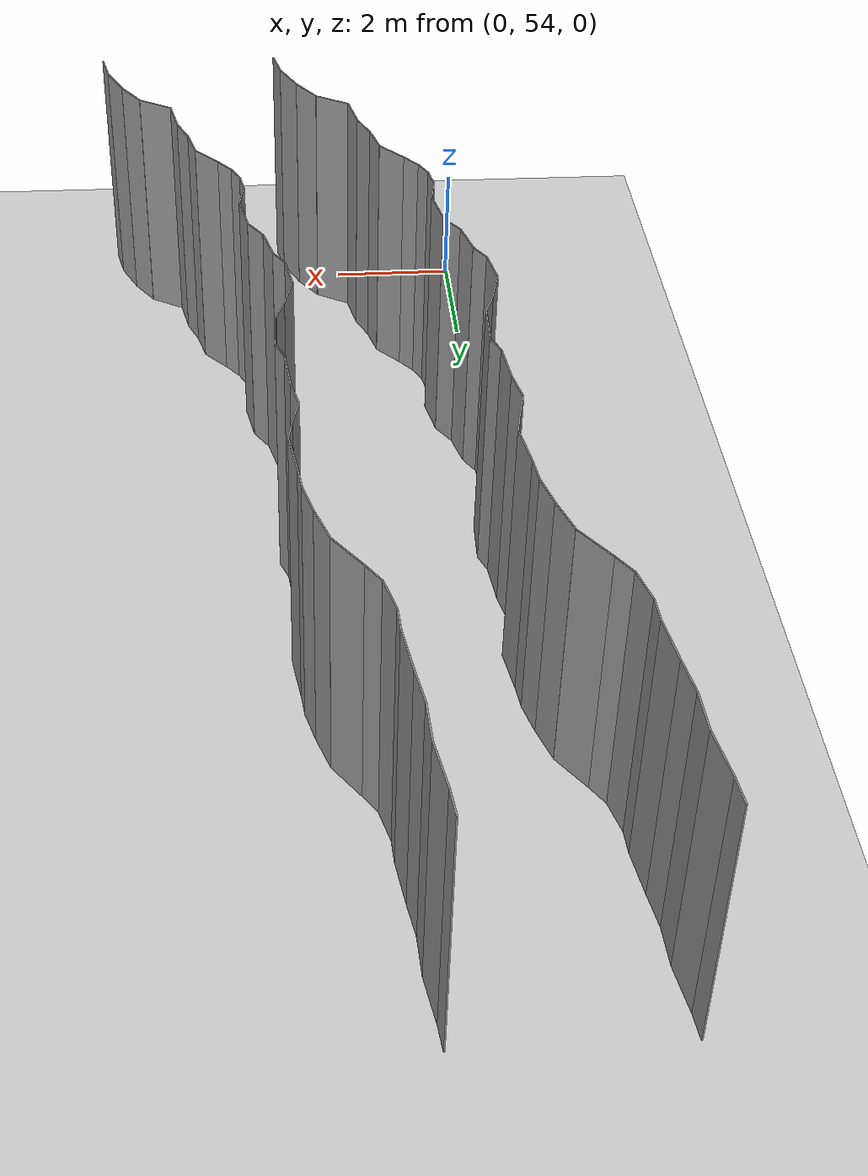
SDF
<sdf version="1.6">
 <world name="default">
  <model name="ground_plane">
   <static>1</static>
   <link name="link">
    <collision name="collision">
     <geometry><plane><normal>0 0 1</normal><size>200 200</size></plane></geometry>
     <surface><friction><ode><mu>100</mu><mu2>50</mu2></ode></friction></surface>
    </collision>
    <visual name="visual">
     <cast_shadows>0</cast_shadows>
     <geometry><plane><normal>0 0 1</normal><size>200 200</size></plane></geometry>
     <material>
      <script><uri>file://media/materials/scripts/gazebo.material</uri><name>Gazebo/Grey</name></script>
     </material>
    </visual>
   </link>
   <pose>0 100 0 0 -0 0</pose>
  </model>
  <model name="wall_224">
   <static>1</static>
   <pose>3.0469100091647694 53.357735936773956 2 0 0 0.21597761606126542</pose>
   <link name="link">
    <collision name="collision"><geometry><box><size>0.02 0.5315800958 4</size></box></geometry></collision>
    <visual name="visual">
     <material>
      <script><name>Gazebo/Grey</name><uri>file://media/materials/scripts/gazebo.material</uri></script>
     </material>
     <geometry><box><size>0.02 0.5315800958 4</size></box></geometry>
    </visual>
   </link>
  </model>
  <model name="wall_225">
   <static>1</static>
   <pose>6.046910009164769 53.357735936773956 2 0 0 0.21597761606126542</pose>
   <link name="link">
    <collision name="collision"><geometry><box><size>0.02 0.5315800958 4</size></box></geometry></collision>
    <visual name="visual">
     <material>
      <script><name>Gazebo/Grey</name><uri>file://media/materials/scripts/gazebo.material</uri></script>
     </material>
     <geometry><box><size>0.02 0.5315800958 4</size></box></geometry>
    </visual>
   </link>
  </model>
  <model name="wall_226">
   <static>1</static>
   <pose>2.8585254818485537 53.89365499840153 2 0 0 0.44398169153281725</pose>
   <link name="link">
    <collision name="collision"><geometry><box><size>0.02 0.6119361437 4</size></box></geometry></collision>
    <visual name="visual">
     <material>
      <script><name>Gazebo/Grey</name><uri>file://media/materials/scripts/gazebo.material</uri></script>
     </material>
     <geometry><box><size>0.02 0.6119361437 4</size></box></geometry>
    </visual>
   </link>
  </model>
  <model name="wall_227">
   <static>1</static>
   <pose>5.858525481848554 53.89365499840153 2 0 0 0.44398169153281725</pose>
   <link name="link">
    <collision name="collision"><geometry><box><size>0.02 0.6119361437 4</size></box></geometry></collision>
    <visual name="visual">
     <material>
      <script><name>Gazebo/Grey</name><uri>file://media/materials/scripts/gazebo.material</uri></script>
     </material>
     <geometry><box><size>0.02 0.6119361437 4</size></box></geometry>
    </visual>
   </link>
  </model>
  <model name="wall_228">
   <static>1</static>
   <pose>2.5685052282514524 54.40315403367497 2 0 0 0.5972428371907589</pose>
   <link name="link">
    <collision name="collision"><geometry><box><size>0.02 0.564029597416 4</size></box></geometry></collision>
    <visual name="visual">
     <material>
      <script><name>Gazebo/Grey</name><uri>file://media/materials/scripts/gazebo.material</uri></script>
     </material>
     <geometry><box><size>0.02 0.564029597416 4</size></box></geometry>
    </visual>
   </link>
  </model>
  <model name="wall_229">
   <static>1</static>
   <pose>5.568505228251452 54.40315403367497 2 0 0 0.5972428371907589</pose>
   <link name="link">
    <collision name="collision"><geometry><box><size>0.02 0.564029597416 4</size></box></geometry></collision>
    <visual name="visual">
     <material>
      <script><name>Gazebo/Grey</name><uri>file://media/materials/scripts/gazebo.material</uri></script>
     </material>
     <geometry><box><size>0.02 0.564029597416 4</size></box></geometry>
    </visual>
   </link>
  </model>
  <model name="wall_230">
   <static>1</static>
   <pose>2.14576811835029 54.79219506804005 2 0 0 1.0377558133247202</pose>
   <link name="link">
    <collision name="collision"><geometry><box><size>0.02 0.613380600814 4</size></box></geometry></collision>
    <visual name="visual">
     <material>
      <script><name>Gazebo/Grey</name><uri>file://media/materials/scripts/gazebo.material</uri></script>
     </material>
     <geometry><box><size>0.02 0.613380600814 4</size></box></geometry>
    </visual>
   </link>
  </model>
  <model name="wall_231">
   <static>1</static>
   <pose>5.14576811835029 54.79219506804005 2 0 0 1.0377558133247202</pose>
   <link name="link">
    <collision name="collision"><geometry><box><size>0.02 0.613380600814 4</size></box></geometry></collision>
    <visual name="visual">
     <material>
      <script><name>Gazebo/Grey</name><uri>file://media/materials/scripts/gazebo.material</uri></script>
     </material>
     <geometry><box><size>0.02 0.613380600814 4</size></box></geometry>
    </visual>
   </link>
  </model>
  <model name="wall_232">
   <static>1</static>
   <pose>1.8197788473367662 55.25654500697312 2 0 0 0.19785230542355284</pose>
   <link name="link">
    <collision name="collision"><geometry><box><size>0.02 0.629284554322 4</size></box></geometry></collision>
    <visual name="visual">
     <material>
      <script><name>Gazebo/Grey</name><uri>file://media/materials/scripts/gazebo.material</uri></script>
     </material>
     <geometry><box><size>0.02 0.629284554322 4</size></box></geometry>
    </visual>
   </link>
  </model>
  <model name="wall_233">
   <static>1</static>
   <pose>4.819778847336766 55.25654500697312 2 0 0 0.19785230542355284</pose>
   <link name="link">
    <collision name="collision"><geometry><box><size>0.02 0.629284554322 4</size></box></geometry></collision>
    <visual name="visual">
     <material>
      <script><name>Gazebo/Grey</name><uri>file://media/materials/scripts/gazebo.material</uri></script>
     </material>
     <geometry><box><size>0.02 0.629284554322 4</size></box></geometry>
    </visual>
   </link>
  </model>
  <model name="wall_234">
   <static>1</static>
   <pose>1.6671939105903992 55.77716529617384 2 0 0 0.404216816663766</pose>
   <link name="link">
    <collision name="collision"><geometry><box><size>0.02 0.461418097082 4</size></box></geometry></collision>
    <visual name="visual">
     <material>
      <script><name>Gazebo/Grey</name><uri>file://media/materials/scripts/gazebo.material</uri></script>
     </material>
     <geometry><box><size>0.02 0.461418097082 4</size></box></geometry>
    </visual>
   </link>
  </model>
  <model name="wall_235">
   <static>1</static>
   <pose>4.667193910590399 55.77716529617384 2 0 0 0.404216816663766</pose>
   <link name="link">
    <collision name="collision"><geometry><box><size>0.02 0.461418097082 4</size></box></geometry></collision>
    <visual name="visual">
     <material>
      <script><name>Gazebo/Grey</name><uri>file://media/materials/scripts/gazebo.material</uri></script>
     </material>
     <geometry><box><size>0.02 0.461418097082 4</size></box></geometry>
    </visual>
   </link>
  </model>
  <model name="wall_236">
   <static>1</static>
   <pose>1.5139411190551675 56.235094826821 2 0 0 0.24904036796168275</pose>
   <link name="link">
    <collision name="collision"><geometry><box><size>0.02 0.507276099676 4</size></box></geometry></collision>
    <visual name="visual">
     <material>
      <script><name>Gazebo/Grey</name><uri>file://media/materials/scripts/gazebo.material</uri></script>
     </material>
     <geometry><box><size>0.02 0.507276099676 4</size></box></geometry>
    </visual>
   </link>
  </model>
  <model name="wall_237">
   <static>1</static>
   <pose>4.5139411190551675 56.235094826821 2 0 0 0.24904036796168275</pose>
   <link name="link">
    <collision name="collision"><geometry><box><size>0.02 0.507276099676 4</size></box></geometry></collision>
    <visual name="visual">
     <material>
      <script><name>Gazebo/Grey</name><uri>file://media/materials/scripts/gazebo.material</uri></script>
     </material>
     <geometry><box><size>0.02 0.507276099676 4</size></box></geometry>
    </visual>
   </link>
  </model>
  <model name="wall_238">
   <static>1</static>
   <pose>1.267714137706734 56.68399894968424 2 0 0 0.7353390931484286</pose>
   <link name="link">
    <collision name="collision"><geometry><box><size>0.02 0.547707799373 4</size></box></geometry></collision>
    <visual name="visual">
     <material>
      <script><name>Gazebo/Grey</name><uri>file://media/materials/scripts/gazebo.material</uri></script>
     </material>
     <geometry><box><size>0.02 0.547707799373 4</size></box></geometry>
    </visual>
   </link>
  </model>
  <model name="wall_239">
   <static>1</static>
   <pose>4.267714137706734 56.68399894968424 2 0 0 0.7353390931484286</pose>
   <link name="link">
    <collision name="collision"><geometry><box><size>0.02 0.547707799373 4</size></box></geometry></collision>
    <visual name="visual">
     <material>
      <script><name>Gazebo/Grey</name><uri>file://media/materials/scripts/gazebo.material</uri></script>
     </material>
     <geometry><box><size>0.02 0.547707799373 4</size></box></geometry>
    </visual>
   </link>
  </model>
  <model name="wall_240">
   <static>1</static>
   <pose>0.9786447442601175 57.01933753155975 2 0 0 0.6727066741226672</pose>
   <link name="link">
    <collision name="collision"><geometry><box><size>0.02 0.33816953673 4</size></box></geometry></collision>
    <visual name="visual">
     <material>
      <script><name>Gazebo/Grey</name><uri>file://media/materials/scripts/gazebo.material</uri></script>
     </material>
     <geometry><box><size>0.02 0.33816953673 4</size></box></geometry>
    </visual>
   </link>
  </model>
  <model name="wall_241">
   <static>1</static>
   <pose>3.9786447442601176 57.01933753155975 2 0 0 0.6727066741226672</pose>
   <link name="link">
    <collision name="collision"><geometry><box><size>0.02 0.33816953673 4</size></box></geometry></collision>
    <visual name="visual">
     <material>
      <script><name>Gazebo/Grey</name><uri>file://media/materials/scripts/gazebo.material</uri></script>
     </material>
     <geometry><box><size>0.02 0.33816953673 4</size></box></geometry>
    </visual>
   </link>
  </model>
  <model name="wall_242">
   <static>1</static>
   <pose>0.8054812937376651 57.286335007406684 2 0 0 0.4662026432535542</pose>
   <link name="link">
    <collision name="collision"><geometry><box><size>0.02 0.30169624213 4</size></box></geometry></collision>
    <visual name="visual">
     <material>
      <script><name>Gazebo/Grey</name><uri>file://media/materials/scripts/gazebo.material</uri></script>
     </material>
     <geometry><box><size>0.02 0.30169624213 4</size></box></geometry>
    </visual>
   </link>
  </model>
  <model name="wall_243">
   <static>1</static>
   <pose>3.805481293737665 57.286335007406684 2 0 0 0.4662026432535542</pose>
   <link name="link">
    <collision name="collision"><geometry><box><size>0.02 0.30169624213 4</size></box></geometry></collision>
    <visual name="visual">
     <material>
      <script><name>Gazebo/Grey</name><uri>file://media/materials/scripts/gazebo.material</uri></script>
     </material>
     <geometry><box><size>0.02 0.30169624213 4</size></box></geometry>
    </visual>
   </link>
  </model>
  <model name="wall_244">
   <static>1</static>
   <pose>0.70924869888814 57.59379057221263 2 0 0 0.16313377308283014</pose>
   <link name="link">
    <collision name="collision"><geometry><box><size>0.02 0.35005909493 4</size></box></geometry></collision>
    <visual name="visual">
     <material>
      <script><name>Gazebo/Grey</name><uri>file://media/materials/scripts/gazebo.material</uri></script>
     </material>
     <geometry><box><size>0.02 0.35005909493 4</size></box></geometry>
    </visual>
   </link>
  </model>
  <model name="wall_245">
   <static>1</static>
   <pose>3.70924869888814 57.59379057221263 2 0 0 0.16313377308283014</pose>
   <link name="link">
    <collision name="collision"><geometry><box><size>0.02 0.35005909493 4</size></box></geometry></collision>
    <visual name="visual">
     <material>
      <script><name>Gazebo/Grey</name><uri>file://media/materials/scripts/gazebo.material</uri></script>
     </material>
     <geometry><box><size>0.02 0.35005909493 4</size></box></geometry>
    </visual>
   </link>
  </model>
  <model name="wall_246">
   <static>1</static>
   <pose>0.7177675229025413 57.99556533211596 2 0 0 -0.15990868047298437</pose>
   <link name="link">
    <collision name="collision"><geometry><box><size>0.02 0.464058640021 4</size></box></geometry></collision>
    <visual name="visual">
     <material>
      <script><name>Gazebo/Grey</name><uri>file://media/materials/scripts/gazebo.material</uri></script>
     </material>
     <geometry><box><size>0.02 0.464058640021 4</size></box></geometry>
    </visual>
   </link>
  </model>
  <model name="wall_247">
   <static>1</static>
   <pose>3.717767522902541 57.99556533211596 2 0 0 -0.15990868047298437</pose>
   <link name="link">
    <collision name="collision"><geometry><box><size>0.02 0.464058640021 4</size></box></geometry></collision>
    <visual name="visual">
     <material>
      <script><name>Gazebo/Grey</name><uri>file://media/materials/scripts/gazebo.material</uri></script>
     </material>
     <geometry><box><size>0.02 0.464058640021 4</size></box></geometry>
    </visual>
   </link>
  </model>
  <model name="wall_248">
   <static>1</static>
   <pose>0.6942032233587048 58.544252459261884 2 0 0 0.18710489902895291</pose>
   <link name="link">
    <collision name="collision"><geometry><box><size>0.02 0.650590993896 4</size></box></geometry></collision>
    <visual name="visual">
     <material>
      <script><name>Gazebo/Grey</name><uri>file://media/materials/scripts/gazebo.material</uri></script>
     </material>
     <geometry><box><size>0.02 0.650590993896 4</size></box></geometry>
    </visual>
   </link>
  </model>
  <model name="wall_249">
   <static>1</static>
   <pose>3.6942032233587048 58.544252459261884 2 0 0 0.18710489902895291</pose>
   <link name="link">
    <collision name="collision"><geometry><box><size>0.02 0.650590993896 4</size></box></geometry></collision>
    <visual name="visual">
     <material>
      <script><name>Gazebo/Grey</name><uri>file://media/materials/scripts/gazebo.material</uri></script>
     </material>
     <geometry><box><size>0.02 0.650590993896 4</size></box></geometry>
    </visual>
   </link>
  </model>
  <model name="wall_250">
   <static>1</static>
   <pose>0.5197944539600577 59.038535474971845 2 0 0 0.5778496227166285</pose>
   <link name="link">
    <collision name="collision"><geometry><box><size>0.02 0.417040998562 4</size></box></geometry></collision>
    <visual name="visual">
     <material>
      <script><name>Gazebo/Grey</name><uri>file://media/materials/scripts/gazebo.material</uri></script>
     </material>
     <geometry><box><size>0.02 0.417040998562 4</size></box></geometry>
    </visual>
   </link>
  </model>
  <model name="wall_251">
   <static>1</static>
   <pose>3.5197944539600576 59.038535474971845 2 0 0 0.5778496227166285</pose>
   <link name="link">
    <collision name="collision"><geometry><box><size>0.02 0.417040998562 4</size></box></geometry></collision>
    <visual name="visual">
     <material>
      <script><name>Gazebo/Grey</name><uri>file://media/materials/scripts/gazebo.material</uri></script>
     </material>
     <geometry><box><size>0.02 0.417040998562 4</size></box></geometry>
    </visual>
   </link>
  </model>
  <model name="wall_252">
   <static>1</static>
   <pose>0.3387992935175921 59.481442060766966 2 0 0 0.24510446537933586</pose>
   <link name="link">
    <collision name="collision"><geometry><box><size>0.02 0.553011719133 4</size></box></geometry></collision>
    <visual name="visual">
     <material>
      <script><name>Gazebo/Grey</name><uri>file://media/materials/scripts/gazebo.material</uri></script>
     </material>
     <geometry><box><size>0.02 0.553011719133 4</size></box></geometry>
    </visual>
   </link>
  </model>
  <model name="wall_253">
   <static>1</static>
   <pose>3.3387992935175923 59.481442060766966 2 0 0 0.24510446537933586</pose>
   <link name="link">
    <collision name="collision"><geometry><box><size>0.02 0.553011719133 4</size></box></geometry></collision>
    <visual name="visual">
     <material>
      <script><name>Gazebo/Grey</name><uri>file://media/materials/scripts/gazebo.material</uri></script>
     </material>
     <geometry><box><size>0.02 0.553011719133 4</size></box></geometry>
    </visual>
   </link>
  </model>
  <model name="wall_254">
   <static>1</static>
   <pose>0.1861713704387841 59.89150077536884 2 0 0 0.5427050104761884</pose>
   <link name="link">
    <collision name="collision"><geometry><box><size>0.02 0.331226476825 4</size></box></geometry></collision>
    <visual name="visual">
     <material>
      <script><name>Gazebo/Grey</name><uri>file://media/materials/scripts/gazebo.material</uri></script>
     </material>
     <geometry><box><size>0.02 0.331226476825 4</size></box></geometry>
    </visual>
   </link>
  </model>
  <model name="wall_255">
   <static>1</static>
   <pose>3.186171370438784 59.89150077536884 2 0 0 0.5427050104761884</pose>
   <link name="link">
    <collision name="collision"><geometry><box><size>0.02 0.331226476825 4</size></box></geometry></collision>
    <visual name="visual">
     <material>
      <script><name>Gazebo/Grey</name><uri>file://media/materials/scripts/gazebo.material</uri></script>
     </material>
     <geometry><box><size>0.02 0.331226476825 4</size></box></geometry>
    </visual>
   </link>
  </model>
  <model name="wall_256">
   <static>1</static>
   <pose>0.05338980499076576 60.31434412971121 2 0 0 0.16657544515750528</pose>
   <link name="link">
    <collision name="collision"><geometry><box><size>0.02 0.569941498424 4</size></box></geometry></collision>
    <visual name="visual">
     <material>
      <script><name>Gazebo/Grey</name><uri>file://media/materials/scripts/gazebo.material</uri></script>
     </material>
     <geometry><box><size>0.02 0.569941498424 4</size></box></geometry>
    </visual>
   </link>
  </model>
  <model name="wall_257">
   <static>1</static>
   <pose>3.0533898049907657 60.31434412971121 2 0 0 0.16657544515750528</pose>
   <link name="link">
    <collision name="collision"><geometry><box><size>0.02 0.569941498424 4</size></box></geometry></collision>
    <visual name="visual">
     <material>
      <script><name>Gazebo/Grey</name><uri>file://media/materials/scripts/gazebo.material</uri></script>
     </material>
     <geometry><box><size>0.02 0.569941498424 4</size></box></geometry>
    </visual>
   </link>
  </model>
  <model name="wall_258">
   <static>1</static>
   <pose>0.07951643496414013 60.88129650150206 2 0 0 -0.251206660173794</pose>
   <link name="link">
    <collision name="collision"><geometry><box><size>0.02 0.590382393381 4</size></box></geometry></collision>
    <visual name="visual">
     <material>
      <script><name>Gazebo/Grey</name><uri>file://media/materials/scripts/gazebo.material</uri></script>
     </material>
     <geometry><box><size>0.02 0.590382393381 4</size></box></geometry>
    </visual>
   </link>
  </model>
  <model name="wall_259">
   <static>1</static>
   <pose>3.07951643496414 60.88129650150206 2 0 0 -0.251206660173794</pose>
   <link name="link">
    <collision name="collision"><geometry><box><size>0.02 0.590382393381 4</size></box></geometry></collision>
    <visual name="visual">
     <material>
      <script><name>Gazebo/Grey</name><uri>file://media/materials/scripts/gazebo.material</uri></script>
     </material>
     <geometry><box><size>0.02 0.590382393381 4</size></box></geometry>
    </visual>
   </link>
  </model>
  <model name="wall_260">
   <static>1</static>
   <pose>0.2159408299151371 61.33228270239758 2 0 0 -0.3648664772771738</pose>
   <link name="link">
    <collision name="collision"><geometry><box><size>0.02 0.353382930785 4</size></box></geometry></collision>
    <visual name="visual">
     <material>
      <script><name>Gazebo/Grey</name><uri>file://media/materials/scripts/gazebo.material</uri></script>
     </material>
     <geometry><box><size>0.02 0.353382930785 4</size></box></geometry>
    </visual>
   </link>
  </model>
  <model name="wall_261">
   <static>1</static>
   <pose>3.2159408299151373 61.33228270239758 2 0 0 -0.3648664772771738</pose>
   <link name="link">
    <collision name="collision"><geometry><box><size>0.02 0.353382930785 4</size></box></geometry></collision>
    <visual name="visual">
     <material>
      <script><name>Gazebo/Grey</name><uri>file://media/materials/scripts/gazebo.material</uri></script>
     </material>
     <geometry><box><size>0.02 0.353382930785 4</size></box></geometry>
    </visual>
   </link>
  </model>
  <model name="wall_262">
   <static>1</static>
   <pose>0.28975729859548044 61.84284507898699 2 0 0 -0.031157910400528142</pose>
   <link name="link">
    <collision name="collision"><geometry><box><size>0.02 0.691340075798 4</size></box></geometry></collision>
    <visual name="visual">
     <material>
      <script><name>Gazebo/Grey</name><uri>file://media/materials/scripts/gazebo.material</uri></script>
     </material>
     <geometry><box><size>0.02 0.691340075798 4</size></box></geometry>
    </visual>
   </link>
  </model>
  <model name="wall_263">
   <static>1</static>
   <pose>3.2897572985954806 61.84284507898699 2 0 0 -0.031157910400528142</pose>
   <link name="link">
    <collision name="collision"><geometry><box><size>0.02 0.691340075798 4</size></box></geometry></collision>
    <visual name="visual">
     <material>
      <script><name>Gazebo/Grey</name><uri>file://media/materials/scripts/gazebo.material</uri></script>
     </material>
     <geometry><box><size>0.02 0.691340075798 4</size></box></geometry>
    </visual>
   </link>
  </model>
  <model name="wall_264">
   <static>1</static>
   <pose>0.24051349178362869 62.34043654869529 2 0 0 0.37583128011215416</pose>
   <link name="link">
    <collision name="collision"><geometry><box><size>0.02 0.327002251511 4</size></box></geometry></collision>
    <visual name="visual">
     <material>
      <script><name>Gazebo/Grey</name><uri>file://media/materials/scripts/gazebo.material</uri></script>
     </material>
     <geometry><box><size>0.02 0.327002251511 4</size></box></geometry>
    </visual>
   </link>
  </model>
  <model name="wall_265">
   <static>1</static>
   <pose>3.240513491783629 62.34043654869529 2 0 0 0.37583128011215416</pose>
   <link name="link">
    <collision name="collision"><geometry><box><size>0.02 0.327002251511 4</size></box></geometry></collision>
    <visual name="visual">
     <material>
      <script><name>Gazebo/Grey</name><uri>file://media/materials/scripts/gazebo.material</uri></script>
     </material>
     <geometry><box><size>0.02 0.327002251511 4</size></box></geometry>
    </visual>
   </link>
  </model>
  <model name="wall_266">
   <static>1</static>
   <pose>0.1500769062979501 62.81488642674286 2 0 0 0.09410053388379272</pose>
   <link name="link">
    <collision name="collision"><geometry><box><size>0.02 0.647586382478 4</size></box></geometry></collision>
    <visual name="visual">
     <material>
      <script><name>Gazebo/Grey</name><uri>file://media/materials/scripts/gazebo.material</uri></script>
     </material>
     <geometry><box><size>0.02 0.647586382478 4</size></box></geometry>
    </visual>
   </link>
  </model>
  <model name="wall_267">
   <static>1</static>
   <pose>3.15007690629795 62.81488642674286 2 0 0 0.09410053388379272</pose>
   <link name="link">
    <collision name="collision"><geometry><box><size>0.02 0.647586382478 4</size></box></geometry></collision>
    <visual name="visual">
     <material>
      <script><name>Gazebo/Grey</name><uri>file://media/materials/scripts/gazebo.material</uri></script>
     </material>
     <geometry><box><size>0.02 0.647586382478 4</size></box></geometry>
    </visual>
   </link>
  </model>
  <model name="wall_268">
   <static>1</static>
   <pose>0.07194333071841352 63.36593823903501 2 0 0 0.20566954590890615</pose>
   <link name="link">
    <collision name="collision"><geometry><box><size>0.02 0.46722939504 4</size></box></geometry></collision>
    <visual name="visual">
     <material>
      <script><name>Gazebo/Grey</name><uri>file://media/materials/scripts/gazebo.material</uri></script>
     </material>
     <geometry><box><size>0.02 0.46722939504 4</size></box></geometry>
    </visual>
   </link>
  </model>
  <model name="wall_269">
   <static>1</static>
   <pose>3.0719433307184136 63.36593823903501 2 0 0 0.20566954590890615</pose>
   <link name="link">
    <collision name="collision"><geometry><box><size>0.02 0.46722939504 4</size></box></geometry></collision>
    <visual name="visual">
     <material>
      <script><name>Gazebo/Grey</name><uri>file://media/materials/scripts/gazebo.material</uri></script>
     </material>
     <geometry><box><size>0.02 0.46722939504 4</size></box></geometry>
    </visual>
   </link>
  </model>
  <model name="wall_270">
   <static>1</static>
   <pose>0.0771355731963411 63.82911684965879 2 0 0 -0.22189065292359647</pose>
   <link name="link">
    <collision name="collision"><geometry><box><size>0.02 0.480761717166 4</size></box></geometry></collision>
    <visual name="visual">
     <material>
      <script><name>Gazebo/Grey</name><uri>file://media/materials/scripts/gazebo.material</uri></script>
     </material>
     <geometry><box><size>0.02 0.480761717166 4</size></box></geometry>
    </visual>
   </link>
  </model>
  <model name="wall_271">
   <static>1</static>
   <pose>3.0771355731963412 63.82911684965879 2 0 0 -0.22189065292359647</pose>
   <link name="link">
    <collision name="collision"><geometry><box><size>0.02 0.480761717166 4</size></box></geometry></collision>
    <visual name="visual">
     <material>
      <script><name>Gazebo/Grey</name><uri>file://media/materials/scripts/gazebo.material</uri></script>
     </material>
     <geometry><box><size>0.02 0.480761717166 4</size></box></geometry>
    </visual>
   </link>
  </model>
  <model name="wall_272">
   <static>1</static>
   <pose>0.15822098396858456 64.21546668503666 2 0 0 -0.1834997688990688</pose>
   <link name="link">
    <collision name="collision"><geometry><box><size>0.02 0.308911010249 4</size></box></geometry></collision>
    <visual name="visual">
     <material>
      <script><name>Gazebo/Grey</name><uri>file://media/materials/scripts/gazebo.material</uri></script>
     </material>
     <geometry><box><size>0.02 0.308911010249 4</size></box></geometry>
    </visual>
   </link>
  </model>
  <model name="wall_273">
   <static>1</static>
   <pose>3.1582209839685844 64.21546668503666 2 0 0 -0.1834997688990688</pose>
   <link name="link">
    <collision name="collision"><geometry><box><size>0.02 0.308911010249 4</size></box></geometry></collision>
    <visual name="visual">
     <material>
      <script><name>Gazebo/Grey</name><uri>file://media/materials/scripts/gazebo.material</uri></script>
     </material>
     <geometry><box><size>0.02 0.308911010249 4</size></box></geometry>
    </visual>
   </link>
  </model>
  <model name="wall_274">
   <static>1</static>
   <pose>0.13712032348165232 64.70174561889586 2 0 0 0.14632107450202025</pose>
   <link name="link">
    <collision name="collision"><geometry><box><size>0.02 0.676057374286 4</size></box></geometry></collision>
    <visual name="visual">
     <material>
      <script><name>Gazebo/Grey</name><uri>file://media/materials/scripts/gazebo.material</uri></script>
     </material>
     <geometry><box><size>0.02 0.676057374286 4</size></box></geometry>
    </visual>
   </link>
  </model>
  <model name="wall_275">
   <static>1</static>
   <pose>3.1371203234816525 64.70174561889586 2 0 0 0.14632107450202025</pose>
   <link name="link">
    <collision name="collision"><geometry><box><size>0.02 0.676057374286 4</size></box></geometry></collision>
    <visual name="visual">
     <material>
      <script><name>Gazebo/Grey</name><uri>file://media/materials/scripts/gazebo.material</uri></script>
     </material>
     <geometry><box><size>0.02 0.676057374286 4</size></box></geometry>
    </visual>
   </link>
  </model>
  <model name="wall_276">
   <static>1</static>
   <pose>0.06801757759086055 65.22206877925245 2 0 0 0.1062025863873621</pose>
   <link name="link">
    <collision name="collision"><geometry><box><size>0.02 0.373919927419 4</size></box></geometry></collision>
    <visual name="visual">
     <material>
      <script><name>Gazebo/Grey</name><uri>file://media/materials/scripts/gazebo.material</uri></script>
     </material>
     <geometry><box><size>0.02 0.373919927419 4</size></box></geometry>
    </visual>
   </link>
  </model>
  <model name="wall_277">
   <static>1</static>
   <pose>3.0680175775908607 65.22206877925245 2 0 0 0.1062025863873621</pose>
   <link name="link">
    <collision name="collision"><geometry><box><size>0.02 0.373919927419 4</size></box></geometry></collision>
    <visual name="visual">
     <material>
      <script><name>Gazebo/Grey</name><uri>file://media/materials/scripts/gazebo.material</uri></script>
     </material>
     <geometry><box><size>0.02 0.373919927419 4</size></box></geometry>
    </visual>
   </link>
  </model>
  <model name="wall_278">
   <static>1</static>
   <pose>-0.015894781601695634 65.64636191416244 2 0 0 0.26265456964257966</pose>
   <link name="link">
    <collision name="collision"><geometry><box><size>0.02 0.493705124492 4</size></box></geometry></collision>
    <visual name="visual">
     <material>
      <script><name>Gazebo/Grey</name><uri>file://media/materials/scripts/gazebo.material</uri></script>
     </material>
     <geometry><box><size>0.02 0.493705124492 4</size></box></geometry>
    </visual>
   </link>
  </model>
  <model name="wall_279">
   <static>1</static>
   <pose>2.9841052183983043 65.64636191416244 2 0 0 0.26265456964257966</pose>
   <link name="link">
    <collision name="collision"><geometry><box><size>0.02 0.493705124492 4</size></box></geometry></collision>
    <visual name="visual">
     <material>
      <script><name>Gazebo/Grey</name><uri>file://media/materials/scripts/gazebo.material</uri></script>
     </material>
     <geometry><box><size>0.02 0.493705124492 4</size></box></geometry>
    </visual>
   </link>
  </model>
  <model name="wall_280">
   <static>1</static>
   <pose>-0.16922209434363597 66.14863711459238 2 0 0 0.3260769960028444</pose>
   <link name="link">
    <collision name="collision"><geometry><box><size>0.02 0.557134825334 4</size></box></geometry></collision>
    <visual name="visual">
     <material>
      <script><name>Gazebo/Grey</name><uri>file://media/materials/scripts/gazebo.material</uri></script>
     </material>
     <geometry><box><size>0.02 0.557134825334 4</size></box></geometry>
    </visual>
   </link>
  </model>
  <model name="wall_281">
   <static>1</static>
   <pose>2.830777905656364 66.14863711459238 2 0 0 0.3260769960028444</pose>
   <link name="link">
    <collision name="collision"><geometry><box><size>0.02 0.557134825334 4</size></box></geometry></collision>
    <visual name="visual">
     <material>
      <script><name>Gazebo/Grey</name><uri>file://media/materials/scripts/gazebo.material</uri></script>
     </material>
     <geometry><box><size>0.02 0.557134825334 4</size></box></geometry>
    </visual>
   </link>
  </model>
  <model name="wall_282">
   <static>1</static>
   <pose>-0.45260548228685604 66.68089905642489 2 0 0 0.6262803526878377</pose>
   <link name="link">
    <collision name="collision"><geometry><box><size>0.02 0.662475606588 4</size></box></geometry></collision>
    <visual name="visual">
     <material>
      <script><name>Gazebo/Grey</name><uri>file://media/materials/scripts/gazebo.material</uri></script>
     </material>
     <geometry><box><size>0.02 0.662475606588 4</size></box></geometry>
    </visual>
   </link>
  </model>
  <model name="wall_283">
   <static>1</static>
   <pose>2.547394517713144 66.68089905642489 2 0 0 0.6262803526878377</pose>
   <link name="link">
    <collision name="collision"><geometry><box><size>0.02 0.662475606588 4</size></box></geometry></collision>
    <visual name="visual">
     <material>
      <script><name>Gazebo/Grey</name><uri>file://media/materials/scripts/gazebo.material</uri></script>
     </material>
     <geometry><box><size>0.02 0.662475606588 4</size></box></geometry>
    </visual>
   </link>
  </model>
  <model name="wall_284">
   <static>1</static>
   <pose>-0.7433858772683711 67.09456733924623 2 0 0 0.5868913540237223</pose>
   <link name="link">
    <collision name="collision"><geometry><box><size>0.02 0.348987391922 4</size></box></geometry></collision>
    <visual name="visual">
     <material>
      <script><name>Gazebo/Grey</name><uri>file://media/materials/scripts/gazebo.material</uri></script>
     </material>
     <geometry><box><size>0.02 0.348987391922 4</size></box></geometry>
    </visual>
   </link>
  </model>
  <model name="wall_285">
   <static>1</static>
   <pose>2.2566141227316288 67.09456733924623 2 0 0 0.5868913540237223</pose>
   <link name="link">
    <collision name="collision"><geometry><box><size>0.02 0.348987391922 4</size></box></geometry></collision>
    <visual name="visual">
     <material>
      <script><name>Gazebo/Grey</name><uri>file://media/materials/scripts/gazebo.material</uri></script>
     </material>
     <geometry><box><size>0.02 0.348987391922 4</size></box></geometry>
    </visual>
   </link>
  </model>
  <model name="wall_286">
   <static>1</static>
   <pose>-0.9059627441859062 67.48847290576853 2 0 0 0.2592891814926531</pose>
   <link name="link">
    <collision name="collision"><geometry><box><size>0.02 0.514416813419 4</size></box></geometry></collision>
    <visual name="visual">
     <material>
      <script><name>Gazebo/Grey</name><uri>file://media/materials/scripts/gazebo.material</uri></script>
     </material>
     <geometry><box><size>0.02 0.514416813419 4</size></box></geometry>
    </visual>
   </link>
  </model>
  <model name="wall_287">
   <static>1</static>
   <pose>2.0940372558140936 67.48847290576853 2 0 0 0.2592891814926531</pose>
   <link name="link">
    <collision name="collision"><geometry><box><size>0.02 0.514416813419 4</size></box></geometry></collision>
    <visual name="visual">
     <material>
      <script><name>Gazebo/Grey</name><uri>file://media/materials/scripts/gazebo.material</uri></script>
     </material>
     <geometry><box><size>0.02 0.514416813419 4</size></box></geometry>
    </visual>
   </link>
  </model>
  <model name="wall_288">
   <static>1</static>
   <pose>-0.9791217007911923 67.91556842502554 2 0 0 0.040386911133309736</pose>
   <link name="link">
    <collision name="collision"><geometry><box><size>0.02 0.357261232999 4</size></box></geometry></collision>
    <visual name="visual">
     <material>
      <script><name>Gazebo/Grey</name><uri>file://media/materials/scripts/gazebo.material</uri></script>
     </material>
     <geometry><box><size>0.02 0.357261232999 4</size></box></geometry>
    </visual>
   </link>
  </model>
  <model name="wall_289">
   <static>1</static>
   <pose>2.0208782992088077 67.91556842502554 2 0 0 0.040386911133309736</pose>
   <link name="link">
    <collision name="collision"><geometry><box><size>0.02 0.357261232999 4</size></box></geometry></collision>
    <visual name="visual">
     <material>
      <script><name>Gazebo/Grey</name><uri>file://media/materials/scripts/gazebo.material</uri></script>
     </material>
     <geometry><box><size>0.02 0.357261232999 4</size></box></geometry>
    </visual>
   </link>
  </model>
  <model name="wall_290">
   <static>1</static>
   <pose>-1.034487607029224 68.43168429205265 2 0 0 0.14166641070357336</pose>
   <link name="link">
    <collision name="collision"><geometry><box><size>0.02 0.682094995798 4</size></box></geometry></collision>
    <visual name="visual">
     <material>
      <script><name>Gazebo/Grey</name><uri>file://media/materials/scripts/gazebo.material</uri></script>
     </material>
     <geometry><box><size>0.02 0.682094995798 4</size></box></geometry>
    </visual>
   </link>
  </model>
  <model name="wall_291">
   <static>1</static>
   <pose>1.965512392970776 68.43168429205265 2 0 0 0.14166641070357336</pose>
   <link name="link">
    <collision name="collision"><geometry><box><size>0.02 0.682094995798 4</size></box></geometry></collision>
    <visual name="visual">
     <material>
      <script><name>Gazebo/Grey</name><uri>file://media/materials/scripts/gazebo.material</uri></script>
     </material>
     <geometry><box><size>0.02 0.682094995798 4</size></box></geometry>
    </visual>
   </link>
  </model>
  <model name="wall_292">
   <static>1</static>
   <pose>-1.1251915657226195 69.02464025424186 2 0 0 0.165134407709567</pose>
   <link name="link">
    <collision name="collision"><geometry><box><size>0.02 0.517692649264 4</size></box></geometry></collision>
    <visual name="visual">
     <material>
      <script><name>Gazebo/Grey</name><uri>file://media/materials/scripts/gazebo.material</uri></script>
     </material>
     <geometry><box><size>0.02 0.517692649264 4</size></box></geometry>
    </visual>
   </link>
  </model>
  <model name="wall_293">
   <static>1</static>
   <pose>1.8748084342773805 69.02464025424186 2 0 0 0.165134407709567</pose>
   <link name="link">
    <collision name="collision"><geometry><box><size>0.02 0.517692649264 4</size></box></geometry></collision>
    <visual name="visual">
     <material>
      <script><name>Gazebo/Grey</name><uri>file://media/materials/scripts/gazebo.material</uri></script>
     </material>
     <geometry><box><size>0.02 0.517692649264 4</size></box></geometry>
    </visual>
   </link>
  </model>
  <model name="wall_294">
   <static>1</static>
   <pose>-1.1771238004531719 69.5729263463402 2 0 0 0.03201312786961726</pose>
   <link name="link">
    <collision name="collision"><geometry><box><size>0.02 0.586222452694 4</size></box></geometry></collision>
    <visual name="visual">
     <material>
      <script><name>Gazebo/Grey</name><uri>file://media/materials/scripts/gazebo.material</uri></script>
     </material>
     <geometry><box><size>0.02 0.586222452694 4</size></box></geometry>
    </visual>
   </link>
  </model>
  <model name="wall_295">
   <static>1</static>
   <pose>1.8228761995468281 69.5729263463402 2 0 0 0.03201312786961726</pose>
   <link name="link">
    <collision name="collision"><geometry><box><size>0.02 0.586222452694 4</size></box></geometry></collision>
    <visual name="visual">
     <material>
      <script><name>Gazebo/Grey</name><uri>file://media/materials/scripts/gazebo.material</uri></script>
     </material>
     <geometry><box><size>0.02 0.586222452694 4</size></box></geometry>
    </visual>
   </link>
  </model>
  <model name="wall_296">
   <static>1</static>
   <pose>-1.2433933042261118 70.20946421157194 2 0 0 0.16408623393438768</pose>
   <link name="link">
    <collision name="collision"><geometry><box><size>0.02 0.696509132911 4</size></box></geometry></collision>
    <visual name="visual">
     <material>
      <script><name>Gazebo/Grey</name><uri>file://media/materials/scripts/gazebo.material</uri></script>
     </material>
     <geometry><box><size>0.02 0.696509132911 4</size></box></geometry>
    </visual>
   </link>
  </model>
  <model name="wall_297">
   <static>1</static>
   <pose>1.7566066957738882 70.20946421157194 2 0 0 0.16408623393438768</pose>
   <link name="link">
    <collision name="collision"><geometry><box><size>0.02 0.696509132911 4</size></box></geometry></collision>
    <visual name="visual">
     <material>
      <script><name>Gazebo/Grey</name><uri>file://media/materials/scripts/gazebo.material</uri></script>
     </material>
     <geometry><box><size>0.02 0.696509132911 4</size></box></geometry>
    </visual>
   </link>
  </model>
  <model name="wall_298">
   <static>1</static>
   <pose>-1.319162343915809 70.74402809695269 2 0 0 0.09854167601225401</pose>
   <link name="link">
    <collision name="collision"><geometry><box><size>0.02 0.383836232432 4</size></box></geometry></collision>
    <visual name="visual">
     <material>
      <script><name>Gazebo/Grey</name><uri>file://media/materials/scripts/gazebo.material</uri></script>
     </material>
     <geometry><box><size>0.02 0.383836232432 4</size></box></geometry>
    </visual>
   </link>
  </model>
  <model name="wall_299">
   <static>1</static>
   <pose>1.680837656084191 70.74402809695269 2 0 0 0.09854167601225401</pose>
   <link name="link">
    <collision name="collision"><geometry><box><size>0.02 0.383836232432 4</size></box></geometry></collision>
    <visual name="visual">
     <material>
      <script><name>Gazebo/Grey</name><uri>file://media/materials/scripts/gazebo.material</uri></script>
     </material>
     <geometry><box><size>0.02 0.383836232432 4</size></box></geometry>
    </visual>
   </link>
  </model>
 </world>
</sdf>
